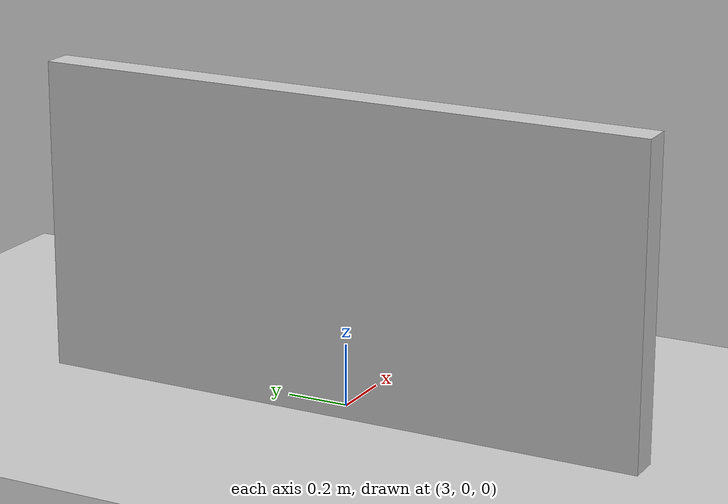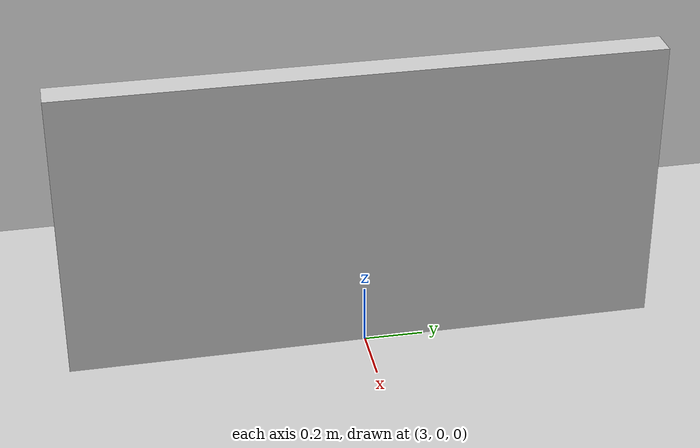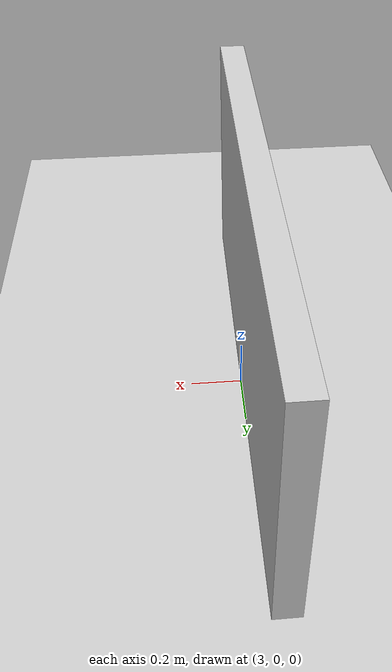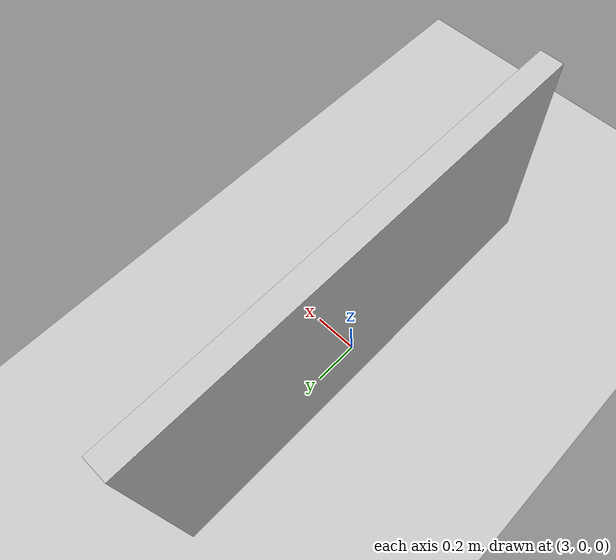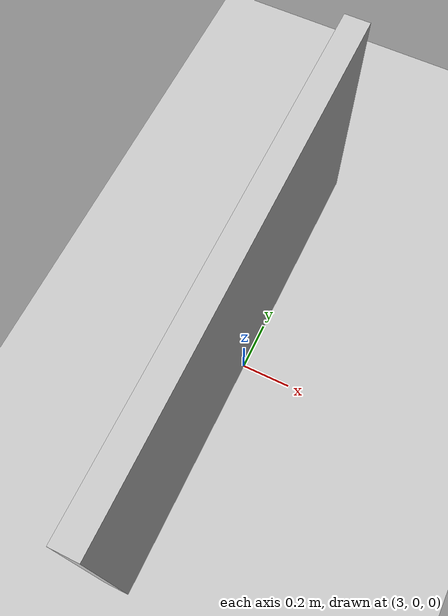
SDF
<?xml version="1.0"?>
<sdf version="1.9">
  <world name="default_world">
  <physics type="ode">
      <max_step_size>0.004</max_step_size>
      <real_time_factor>1.0</real_time_factor>
      <real_time_update_rate>250</real_time_update_rate>
    </physics>
    <gravity>0 0 -9.8</gravity>
    <magnetic_field>6e-06 2.3e-05 -4.2e-05</magnetic_field>
    <atmosphere type="adiabatic"/>
    <scene>
      <grid>false</grid>
      <ambient>0.4 0.4 0.4 1</ambient>
      <background>0.7 0.7 0.7 1</background>
      <shadows>true</shadows>
    </scene>
    <scene>
      <ambient>0.8 0.8 0.8</ambient>
      <grid>false</grid>
    </scene>
    <plugin filename="gz-sim-physics-system" name="gz::sim::systems::Physics">
    </plugin>

    <physics name="physics_config" type="dart">
      <max_step_size>0.002</max_step_size>
      <real_time_factor>1.0</real_time_factor>
    </physics>

    <plugin filename="gz-sim-scene-broadcaster-system" name="gz::sim::systems::SceneBroadcaster">
    </plugin>

    <scene>
      <ambient>0.8 0.8 0.8</ambient>
      <grid>false</grid>
    </scene>

    <plugin filename="gz-sim-user-commands-system" name="gz::sim::systems::UserCommands">
    </plugin>

    <light type="directional" name="sun">
      <cast_shadows>true</cast_shadows>
      <pose>0 0 10 0 0 0</pose>
      <diffuse>0.8 0.8 0.8 1</diffuse>
      <specular>0.2 0.2 0.2 1</specular>
      <attenuation>
        <range>1000</range>
        <constant>0.9</constant>
        <linear>0.01</linear>
        <quadratic>0.001</quadratic>
      </attenuation>
      <direction>-0.3 0.3 -0.9</direction>
    </light>

    <model name="ground_plane">
      <pose>0.5 0 0 0 0 0</pose>
      <static>true</static>
      <link name="ground_plane_link">
        <collision name="ground_plane_collision">
          <pose>0 0 -0.05 0 0 0</pose>
          <geometry>
            <box>
              <size>5 2 0.1</size>
            </box>
          </geometry>
        </collision>
        <visual name="ground_plane_visual">
          <geometry>
            <plane>
              <normal>0 0 1</normal>
              <size>5 2</size>
            </plane>
          </geometry>
          <material>
            <diffuse>0.8 0.8 0.8 1</diffuse>
            <specular>0.8 0.8 0.8 1</specular>
          </material>
        </visual>
      </link>
    </model>

    <model name="underground_plane">
      <pose>0.5 0 -10.0 0 0 0</pose>
      <static>true</static>
      <link name="underground_plane_link">
        <collision name="underground_plane_collision">
          <geometry>
            <plane>
              <normal>0 0 1</normal>
            </plane>
          </geometry>
        </collision>
      </link>
    </model>

    <model name="blockade">
      <pose>2.95 0 0.5 0 0 0</pose>
      <static>true</static>
      <link name="blockade_link">
        <collision name="blockade_collision">
          <geometry>
            <box>
              <size>0.1 2.0 1.0</size>
            </box>
          </geometry>
        </collision>
        <visual name="blockade_visual">
          <geometry>
            <box>
              <size>0.1 2.0 1.0</size>
            </box>
          </geometry>
          <material>
            <diffuse>0.8 0.8 0.8 1</diffuse>
            <specular>0.8 0.8 0.8 1</specular>
          </material>
        </visual>
      </link>
    </model>

  </world>
</sdf>
